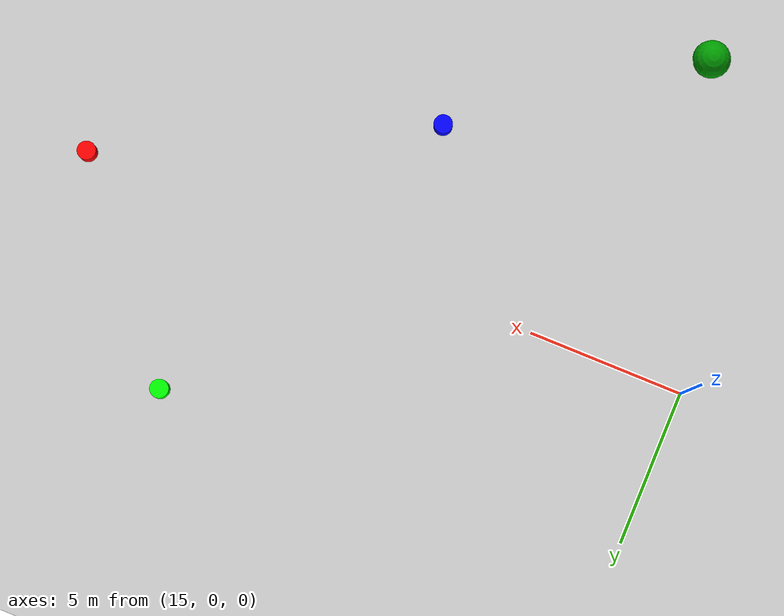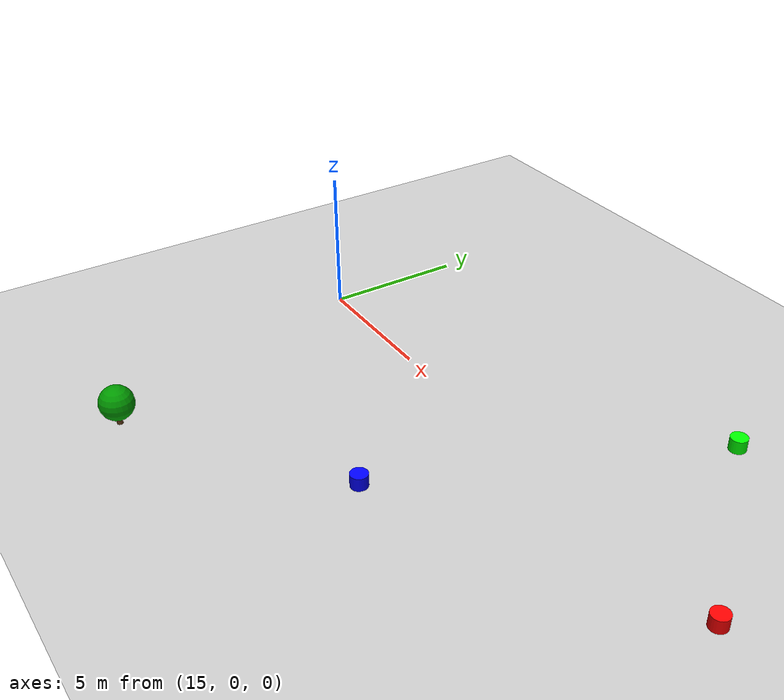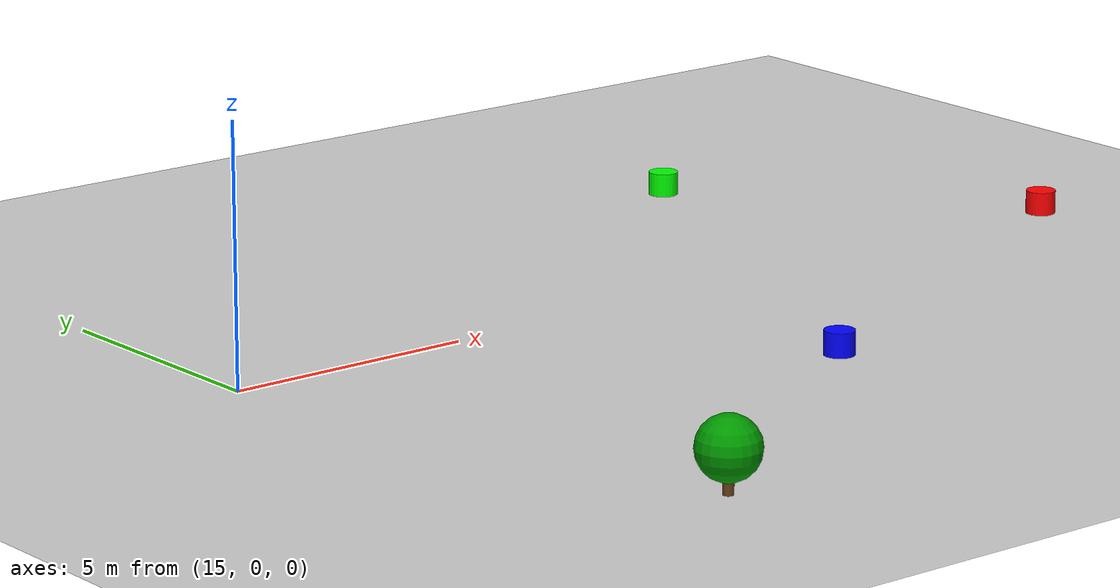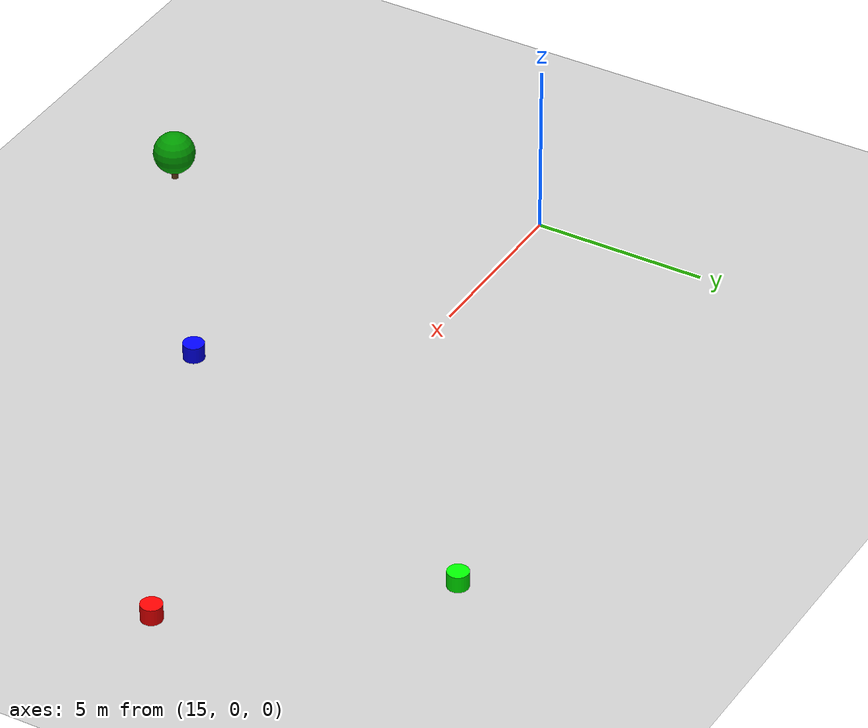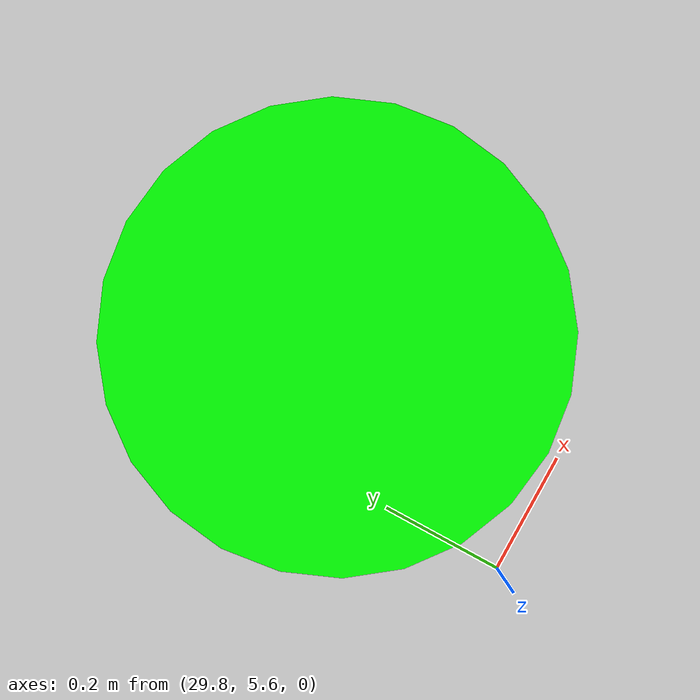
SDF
<?xml version="1.0" ?>
<sdf version="1.9">
  <world name="pole_z_beczkami">

    <!-- GPS -->
    <spherical_coordinates>
      <surface_model>EARTH_WGS84</surface_model>
      <latitude_deg>52.229770</latitude_deg>
      <longitude_deg>21.011780</longitude_deg>
      <elevation>100.0</elevation>
    </spherical_coordinates>

    <!-- Światło -->
    <include>
      <uri>https://fuel.gazebosim.org/1.0/OpenRobotics/models/Sun</uri>
    </include>

    <!-- Pole (ziemia) -->
    <model name="pole">
      <static>true</static>
      <pose>20 0 0 0 0 0</pose>
      <link name="ground">
        <collision name="collision">
          <geometry>
            <plane>
              <normal>0 0 1</normal>
              <size>40 30</size>
            </plane>
          </geometry>
        </collision>
        <visual name="visual">
          <geometry>
            <plane>
              <normal>0 0 1</normal>
              <size>40 30</size>
            </plane>
          </geometry>
          <material>
            <pbr>
              <metal>
                <albedo_map>materials/textures/plowed_field.png</albedo_map>
              </metal>
            </pbr>
          </material>
        </visual>
      </link>
    </model>

    <!-- Beczki -->
    <include>
      <uri>model://barrel_blue</uri>
      <pose>25 -5 0 0 0 0</pose>
    </include>

    <include>
      <uri>model://barrel_green</uri>
      <pose>30 6 0 0 0 0</pose>
    </include>

    <include>
      <uri>model://barrel_red</uri>
      <pose>35 0 0 0 0 0</pose>
    </include>

    <!-- Drzewka -->
    <include>
      <uri>model://small_tree</uri>
      <pose>18 -10 0 0 0 0</pose>
    </include>

  </world>
</sdf>

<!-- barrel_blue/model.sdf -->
<sdf version="1.9">
  <model name="barrel_blue">
    <static>true</static>
    <link name="link">
      <visual name="visual">
        <geometry>
          <cylinder>
            <radius>0.3</radius>
            <length>0.9</length>
          </cylinder>
        </geometry>
        <material>
          <ambient>0 0 1 1</ambient>
          <diffuse>0 0 1 1</diffuse>
        </material>
      </visual>
      <collision name="collision">
        <geometry>
          <cylinder>
            <radius>0.3</radius>
            <length>0.9</length>
          </cylinder>
        </geometry>
      </collision>
    </link>
  </model>
</sdf>

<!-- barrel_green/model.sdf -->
<sdf version="1.9">
  <model name="barrel_green">
    <static>true</static>
    <link name="link">
      <visual name="visual">
        <geometry>
          <cylinder>
            <radius>0.3</radius>
            <length>0.9</length>
          </cylinder>
        </geometry>
        <material>
          <ambient>0 1 0 1</ambient>
          <diffuse>0 1 0 1</diffuse>
        </material>
      </visual>
      <collision name="collision">
        <geometry>
          <cylinder>
            <radius>0.3</radius>
            <length>0.9</length>
          </cylinder>
        </geometry>
      </collision>
    </link>
  </model>
</sdf>

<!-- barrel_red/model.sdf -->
<sdf version="1.9">
  <model name="barrel_red">
    <static>true</static>
    <link name="link">
      <visual name="visual">
        <geometry>
          <cylinder>
            <radius>0.3</radius>
            <length>0.9</length>
          </cylinder>
        </geometry>
        <material>
          <ambient>1 0 0 1</ambient>
          <diffuse>1 0 0 1</diffuse>
        </material>
      </visual>
      <collision name="collision">
        <geometry>
          <cylinder>
            <radius>0.3</radius>
            <length>0.9</length>
          </cylinder>
        </geometry>
      </collision>
    </link>
  </model>
</sdf>

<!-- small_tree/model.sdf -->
<sdf version="1.9">
  <model name="small_tree">
    <static>true</static>
    <link name="link">
      <visual name="trunk">
        <geometry>
          <cylinder>
            <radius>0.1</radius>
            <length>1.2</length>
          </cylinder>
        </geometry>
        <material>
          <ambient>0.4 0.25 0.1 1</ambient>
        </material>
      </visual>
      <visual name="leaves">
        <pose>0 0 0.8 0 0 0</pose>
        <geometry>
          <sphere>
            <radius>0.6</radius>
          </sphere>
        </geometry>
        <material>
          <ambient>0 0.6 0 1</ambient>
        </material>
      </visual>
    </link>
  </model>
</sdf>
